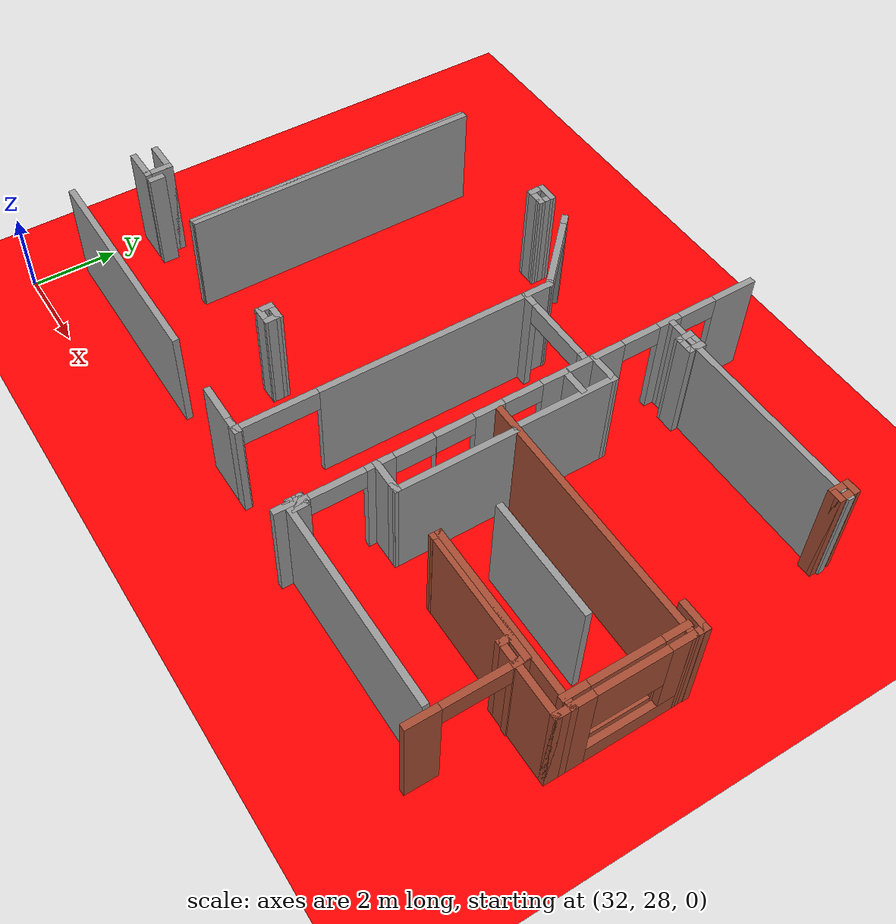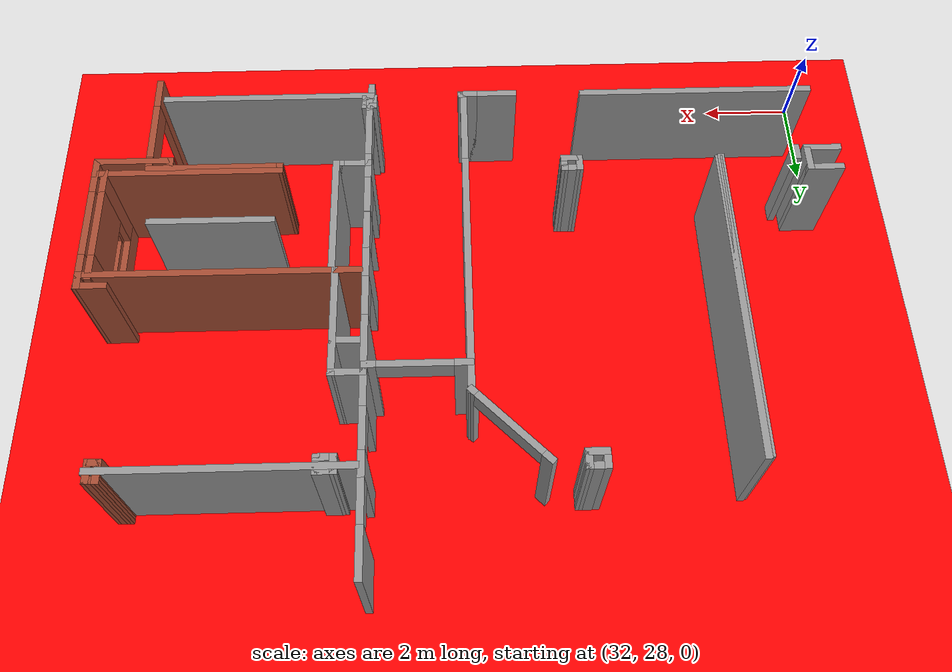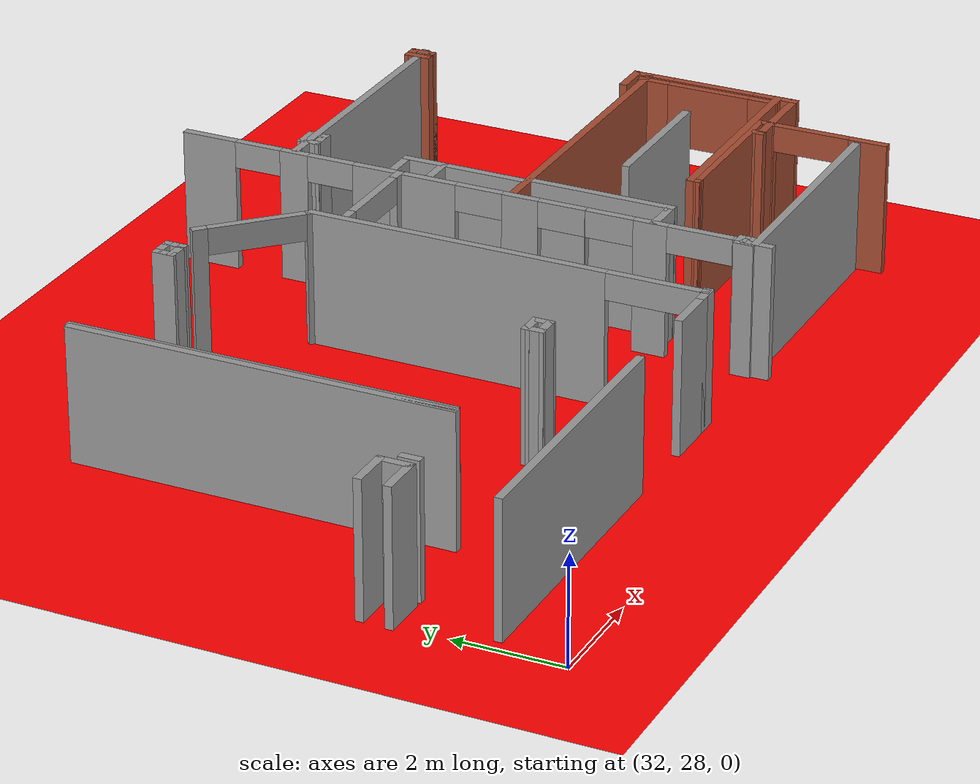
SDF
<sdf version="1.7">
 <world name="RaSpectLoc_ign">
  <model name="ground_plane">
   <static>1</static>
   <link name="link">
    <collision name="collision">
     <geometry><plane><normal>0 0 1</normal><size>100 100</size></plane></geometry>
     <surface><friction><ode><mu>100</mu><mu2>50</mu2></ode></friction></surface>
    </collision>
    <visual name="visual">
     <cast_shadows>0</cast_shadows>
     <geometry><plane><normal>0 0 1</normal><size>100 100</size></plane></geometry>
     <material><ambient>1 0 0 1</ambient><diffuse>1 0 0 1</diffuse><specular>0.1 0.1 0.1 1</specular></material>
    </visual>
   </link>
  </model>
  <model name="CVSSP">
   <pose>23.8714 24.094 0 0 -0 0</pose>
   <link name="Wall_1">
    <pose>15.5976 13.2926 0 0 0 -0.785398</pose>
    <visual name="Wall_1_Visual_0">
     <pose>-0.986494 0 1.25 0 -0 0</pose>
     <geometry><box><size>0.277012 0.15 2.5</size></box></geometry>
     <material>
      <script><uri>file://media/materials/scripts/gazebo.material</uri><name>Gazebo/Grey</name></script>
      <ambient>0.588235 0.588235 0.588235 1</ambient>
     </material>
    </visual>
    <collision name="Wall_1_Collision_0">
     <geometry><box><size>0.277012 0.15 2.5</size></box></geometry>
     <pose>-0.986494 0 1.25 0 -0 0</pose>
    </collision>
    <visual name="Wall_1_Visual_1">
     <pose>1.02335 0 1.25 0 -0 0</pose>
     <geometry><box><size>0.203299 0.15 2.5</size></box></geometry>
     <material>
      <script><uri>file://media/materials/scripts/gazebo.material</uri><name>Gazebo/Grey</name></script>
      <ambient>0.588235 0.588235 0.588235 1</ambient>
     </material>
    </visual>
    <collision name="Wall_1_Collision_1">
     <geometry><box><size>0.203299 0.15 2.5</size></box></geometry>
     <pose>1.02335 0 1.25 0 -0 0</pose>
    </collision>
    <visual name="Wall_1_Visual_2">
     <pose>0.036857 0 2.25 0 -0 0</pose>
     <geometry><box><size>1.76969 0.15 0.5</size></box></geometry>
     <material>
      <script><uri>file://media/materials/scripts/gazebo.material</uri><name>Gazebo/Grey</name></script>
      <ambient>0.588235 0.588235 0.588235 1</ambient>
     </material>
    </visual>
    <collision name="Wall_1_Collision_2">
     <geometry><box><size>1.76969 0.15 0.5</size></box></geometry>
     <pose>0.036857 0 2.25 0 -0 0</pose>
    </collision>
   </link>
   <link name="Wall_110">
    <collision name="Wall_110_Collision">
     <geometry><box><size>0.435877 0.15 2.5</size></box></geometry>
     <pose>0 0 1.25 0 -0 0</pose>
    </collision>
    <visual name="Wall_110_Visual">
     <pose>0 0 1.25 0 -0 0</pose>
     <geometry><box><size>0.435877 0.15 2.5</size></box></geometry>
     <material>
      <script><uri>file://media/materials/scripts/gazebo.material</uri><name>Gazebo/Grey</name></script>
      <ambient>1 1 1 1</ambient>
     </material>
    </visual>
    <pose>16.2513 5.17604 0 0 -0 0</pose>
   </link>
   <link name="Wall_112">
    <collision name="Wall_112_Collision">
     <geometry><box><size>1.05344 0.15 2.5</size></box></geometry>
     <pose>0 0 1.25 0 -0 0</pose>
    </collision>
    <visual name="Wall_112_Visual">
     <pose>0 0 1.25 0 -0 0</pose>
     <geometry><box><size>1.05344 0.15 2.5</size></box></geometry>
     <material>
      <script><uri>file://media/materials/scripts/gazebo.material</uri><name>Gazebo/Grey</name></script>
      <ambient>1 1 1 1</ambient>
     </material>
    </visual>
    <pose>15.6567 5.17604 0 0 -0 3.14159</pose>
   </link>
   <link name="Wall_137">
    <collision name="Wall_137_Collision">
     <geometry><box><size>0.344547 0.15 2.5</size></box></geometry>
     <pose>0 0 1.25 0 -0 0</pose>
    </collision>
    <visual name="Wall_137_Visual">
     <pose>0 0 1.25 0 -0 0</pose>
     <geometry><box><size>0.344547 0.15 2.5</size></box></geometry>
     <material>
      <script><uri>file://media/materials/scripts/gazebo.material</uri><name>Gazebo/Grey</name></script>
      <ambient>1 1 1 1</ambient>
     </material>
    </visual>
    <pose>18.4776 5.4664 0 0 -0 0</pose>
   </link>
   <link name="Wall_138">
    <collision name="Wall_138_Collision">
     <geometry><box><size>0.37481 0.15 2.5</size></box></geometry>
     <pose>0 0 1.25 0 -0 0</pose>
    </collision>
    <visual name="Wall_138_Visual">
     <pose>0 0 1.25 0 -0 0</pose>
     <geometry><box><size>0.37481 0.15 2.5</size></box></geometry>
     <material>
      <script><uri>file://media/materials/scripts/gazebo.material</uri><name>Gazebo/Grey</name></script>
      <ambient>1 1 1 1</ambient>
     </material>
    </visual>
    <pose>18.5749 5.354 0 0 0 -1.5708</pose>
   </link>
   <link name="Wall_139">
    <collision name="Wall_139_Collision">
     <geometry><box><size>0.344547 0.15 2.5</size></box></geometry>
     <pose>0 0 1.25 0 -0 0</pose>
    </collision>
    <visual name="Wall_139_Visual">
     <pose>0 0 1.25 0 -0 0</pose>
     <geometry><box><size>0.344547 0.15 2.5</size></box></geometry>
     <material>
      <script><uri>file://media/materials/scripts/gazebo.material</uri><name>Gazebo/Grey</name></script>
      <ambient>1 1 1 1</ambient>
     </material>
    </visual>
    <pose>18.4776 5.24159 0 0 -0 3.14159</pose>
   </link>
   <link name="Wall_140">
    <collision name="Wall_140_Collision">
     <geometry><box><size>0.370487 0.15 2.5</size></box></geometry>
     <pose>0 0 1.25 0 -0 0</pose>
    </collision>
    <visual name="Wall_140_Visual">
     <pose>0 0 1.25 0 -0 0</pose>
     <geometry><box><size>0.370487 0.15 2.5</size></box></geometry>
     <material>
      <script><uri>file://media/materials/scripts/gazebo.material</uri><name>Gazebo/Grey</name></script>
      <ambient>1 1 1 1</ambient>
     </material>
    </visual>
    <pose>18.3803 5.35184 0 0 -0 1.5708</pose>
   </link>
   <link name="Wall_142">
    <collision name="Wall_142_Collision">
     <geometry><box><size>4.79472 0.15 2.5</size></box></geometry>
     <pose>0 0 1.25 0 -0 0</pose>
    </collision>
    <visual name="Wall_142_Visual">
     <pose>0 0 1.25 0 -0 0</pose>
     <geometry><box><size>4.79472 0.15 2.5</size></box></geometry>
     <material>
      <script><uri>file://media/materials/scripts/gazebo.material</uri><name>Gazebo/Grey</name></script>
      <ambient>1 1 1 1</ambient>
     </material>
    </visual>
    <pose>20.7622 5.16977 0 0 0 -3.14127</pose>
   </link>
   <link name="Wall_200">
    <pose>23.2929 5.89364 0 0 -0 1.57095</pose>
    <visual name="Wall_200_Visual_0">
     <pose>-0.901323 0 1.25 0 -0 0</pose>
     <geometry><box><size>0.73684 0.15 2.5</size></box></geometry>
     <material>
      <script><uri>file://media/materials/scripts/gazebo.material</uri><name>Gazebo/Bricks</name></script>
      <ambient>0.588235 0.588235 0.588235 1</ambient>
     </material>
    </visual>
    <collision name="Wall_200_Collision_0">
     <geometry><box><size>0.73684 0.15 2.5</size></box></geometry>
     <pose>-0.901323 0 1.25 0 -0 0</pose>
    </collision>
    <visual name="Wall_200_Visual_1">
     <pose>1.08077 0 1.25 0 -0 0</pose>
     <geometry><box><size>0.377951 0.15 2.5</size></box></geometry>
     <material>
      <script><uri>file://media/materials/scripts/gazebo.material</uri><name>Gazebo/Bricks</name></script>
      <ambient>0.588235 0.588235 0.588235 1</ambient>
     </material>
    </visual>
    <collision name="Wall_200_Collision_1">
     <geometry><box><size>0.377951 0.15 2.5</size></box></geometry>
     <pose>1.08077 0 1.25 0 -0 0</pose>
    </collision>
    <visual name="Wall_200_Visual_2">
     <pose>0.179445 0 2.25 0 -0 0</pose>
     <geometry><box><size>1.4247 0.15 0.5</size></box></geometry>
     <material>
      <script><uri>file://media/materials/scripts/gazebo.material</uri><name>Gazebo/Bricks</name></script>
      <ambient>0.588235 0.588235 0.588235 1</ambient>
     </material>
    </visual>
    <collision name="Wall_200_Collision_2">
     <geometry><box><size>1.4247 0.15 0.5</size></box></geometry>
     <pose>0.179445 0 2.25 0 -0 0</pose>
    </collision>
   </link>
   <link name="Wall_201">
    <collision name="Wall_201_Collision">
     <geometry><box><size>3.01986 0.15 2.5</size></box></geometry>
     <pose>0 0 1.25 0 -0 0</pose>
    </collision>
    <visual name="Wall_201_Visual">
     <pose>0 0 1.25 0 -0 0</pose>
     <geometry><box><size>3.01986 0.15 2.5</size></box></geometry>
     <material>
      <script><uri>file://media/materials/scripts/gazebo.material</uri><name>Gazebo/Bricks</name></script>
      <ambient>1 1 1 1</ambient>
     </material>
    </visual>
    <pose>21.8512 7.08991 0 0 -0 3.14064</pose>
   </link>
   <link name="Wall_203">
    <collision name="Wall_203_Collision">
     <geometry><box><size>0.268535 0.15 2.5</size></box></geometry>
     <pose>0 0 1.25 0 -0 0</pose>
    </collision>
    <visual name="Wall_203_Visual">
     <pose>0 0 1.25 0 -0 0</pose>
     <geometry><box><size>0.268535 0.15 2.5</size></box></geometry>
     <material>
      <script><uri>file://media/materials/scripts/gazebo.material</uri><name>Gazebo/Bricks</name></script>
      <ambient>1 1 1 1</ambient>
     </material>
    </visual>
    <pose>20.4196 7.15046 0 0 -0 1.5153</pose>
   </link>
   <link name="Wall_204">
    <collision name="Wall_204_Collision">
     <geometry><box><size>4.16742 0.15 2.5</size></box></geometry>
     <pose>0 0 1.25 0 -0 0</pose>
    </collision>
    <visual name="Wall_204_Visual">
     <pose>0 0 1.25 0 -0 0</pose>
     <geometry><box><size>4.16742 0.15 2.5</size></box></geometry>
     <material>
      <script><uri>file://media/materials/scripts/gazebo.material</uri><name>Gazebo/Bricks</name></script>
      <ambient>1 1 1 1</ambient>
     </material>
    </visual>
    <pose>22.425 7.20963 0 0 -0 0</pose>
   </link>
   <link name="Wall_206">
    <collision name="Wall_206_Collision">
     <geometry><box><size>0.472183 0.15 2.5</size></box></geometry>
     <pose>0 0 1.25 0 -0 0</pose>
    </collision>
    <visual name="Wall_206_Visual">
     <pose>0 0 1.25 0 -0 0</pose>
     <geometry><box><size>0.472183 0.15 2.5</size></box></geometry>
     <material>
      <script><uri>file://media/materials/scripts/gazebo.material</uri><name>Gazebo/Bricks</name></script>
      <ambient>1 1 1 1</ambient>
     </material>
    </visual>
    <pose>24.4337 7.04854 0 0 0 -1.5708</pose>
   </link>
   <link name="Wall_207">
    <collision name="Wall_207_Collision">
     <geometry><box><size>1.75 0.15 2.5</size></box></geometry>
     <pose>0 0 1.25 0 -0 0</pose>
    </collision>
    <visual name="Wall_207_Visual">
     <pose>0 0 1.25 0 -0 0</pose>
     <geometry><box><size>1.75 0.15 2.5</size></box></geometry>
     <material>
      <script><uri>file://media/materials/scripts/gazebo.material</uri><name>Gazebo/Bricks</name></script>
      <ambient>1 1 1 1</ambient>
     </material>
    </visual>
    <pose>23.6337 6.88745 0 0 -0 3.14159</pose>
   </link>
   <link name="Wall_208">
    <collision name="Wall_208_Collision">
     <geometry><box><size>0.25 0.15 2.5</size></box></geometry>
     <pose>0 0 1.25 0 -0 0</pose>
    </collision>
    <visual name="Wall_208_Visual">
     <pose>0 0 1.25 0 -0 0</pose>
     <geometry><box><size>0.25 0.15 2.5</size></box></geometry>
     <material>
      <script><uri>file://media/materials/scripts/gazebo.material</uri><name>Gazebo/Bricks</name></script>
      <ambient>1 1 1 1</ambient>
     </material>
    </visual>
    <pose>22.8337 6.93745 0 0 -0 1.5708</pose>
   </link>
   <link name="Wall_213">
    <pose>24.4337 8.48333 0 0 -0 1.5708</pose>
    <visual name="Wall_213_Visual_0">
     <pose>-1.07539 0 1.25 0 -0 0</pose>
     <geometry><box><size>0.546615 0.15 2.5</size></box></geometry>
     <material>
      <script><uri>file://media/materials/scripts/gazebo.material</uri><name>Gazebo/Bricks</name></script>
      <ambient>1 1 1 1</ambient>
     </material>
    </visual>
    <collision name="Wall_213_Collision_0">
     <geometry><box><size>0.546615 0.15 2.5</size></box></geometry>
     <pose>-1.07539 0 1.25 0 -0 0</pose>
    </collision>
    <visual name="Wall_213_Visual_1">
     <pose>0.273308 0 0.25 0 -0 0</pose>
     <geometry><box><size>2.15078 0.15 0.5</size></box></geometry>
     <material>
      <script><uri>file://media/materials/scripts/gazebo.material</uri><name>Gazebo/Bricks</name></script>
      <ambient>1 1 1 1</ambient>
     </material>
    </visual>
    <collision name="Wall_213_Collision_1">
     <geometry><box><size>2.15078 0.15 0.5</size></box></geometry>
     <pose>0.273308 0 0.25 0 -0 0</pose>
    </collision>
    <visual name="Wall_213_Visual_2">
     <pose>1.06771 0 1.5 0 -0 0</pose>
     <geometry><box><size>0.561981 0.15 2</size></box></geometry>
     <material>
      <script><uri>file://media/materials/scripts/gazebo.material</uri><name>Gazebo/Bricks</name></script>
      <ambient>1 1 1 1</ambient>
     </material>
    </visual>
    <collision name="Wall_213_Collision_2">
     <geometry><box><size>0.561981 0.15 2</size></box></geometry>
     <pose>1.06771 0 1.5 0 -0 0</pose>
    </collision>
    <visual name="Wall_213_Visual_3">
     <pose>-0.007683 0 1.9 0 -0 0</pose>
     <geometry><box><size>1.5888 0.15 1.2</size></box></geometry>
     <material>
      <script><uri>file://media/materials/scripts/gazebo.material</uri><name>Gazebo/Bricks</name></script>
      <ambient>1 1 1 1</ambient>
     </material>
    </visual>
    <collision name="Wall_213_Collision_3">
     <geometry><box><size>1.5888 0.15 1.2</size></box></geometry>
     <pose>-0.007683 0 1.9 0 -0 0</pose>
    </collision>
   </link>
   <link name="Wall_214">
    <collision name="Wall_214_Collision">
     <geometry><box><size>5.97381 0.15 2.5</size></box></geometry>
     <pose>0 0 1.25 0 -0 0</pose>
    </collision>
    <visual name="Wall_214_Visual">
     <pose>0 0 1.25 0 -0 0</pose>
     <geometry><box><size>5.97381 0.15 2.5</size></box></geometry>
     <material>
      <script><uri>file://media/materials/scripts/gazebo.material</uri><name>Gazebo/Bricks</name></script>
      <ambient>0.588235 0.588235 0.588235 1</ambient>
     </material>
    </visual>
    <pose>21.5218 9.76806 0 0 -0 3.14006</pose>
   </link>
   <link name="Wall_220">
    <pose>24.2299 8.49507 0 0 0 -1.5708</pose>
    <visual name="Wall_220_Visual_0">
     <pose>-1.08519 0 1.25 0 -0 0</pose>
     <geometry><box><size>0.603103 0.15 2.5</size></box></geometry>
     <material>
      <script><uri>file://media/materials/scripts/gazebo.material</uri><name>Gazebo/Bricks</name></script>
      <ambient>1 1 1 1</ambient>
     </material>
    </visual>
    <collision name="Wall_220_Collision_0">
     <geometry><box><size>0.603103 0.15 2.5</size></box></geometry>
     <pose>-1.08519 0 1.25 0 -0 0</pose>
    </collision>
    <visual name="Wall_220_Visual_1">
     <pose>0.301552 0 0.25 0 -0 0</pose>
     <geometry><box><size>2.17039 0.15 0.5</size></box></geometry>
     <material>
      <script><uri>file://media/materials/scripts/gazebo.material</uri><name>Gazebo/Bricks</name></script>
      <ambient>1 1 1 1</ambient>
     </material>
    </visual>
    <collision name="Wall_220_Collision_1">
     <geometry><box><size>2.17039 0.15 0.5</size></box></geometry>
     <pose>0.301552 0 0.25 0 -0 0</pose>
    </collision>
    <visual name="Wall_220_Visual_2">
     <pose>1.09595 0 1.5 0 -0 0</pose>
     <geometry><box><size>0.581584 0.15 2</size></box></geometry>
     <material>
      <script><uri>file://media/materials/scripts/gazebo.material</uri><name>Gazebo/Bricks</name></script>
      <ambient>1 1 1 1</ambient>
     </material>
    </visual>
    <collision name="Wall_220_Collision_2">
     <geometry><box><size>0.581584 0.15 2</size></box></geometry>
     <pose>1.09595 0 1.5 0 -0 0</pose>
    </collision>
    <visual name="Wall_220_Visual_3">
     <pose>0.010759 0 1.9 0 -0 0</pose>
     <geometry><box><size>1.5888 0.15 1.2</size></box></geometry>
     <material>
      <script><uri>file://media/materials/scripts/gazebo.material</uri><name>Gazebo/Bricks</name></script>
      <ambient>1 1 1 1</ambient>
     </material>
    </visual>
    <collision name="Wall_220_Collision_3">
     <geometry><box><size>1.5888 0.15 1.2</size></box></geometry>
     <pose>0.010759 0 1.9 0 -0 0</pose>
    </collision>
   </link>
   <link name="Wall_222">
    <collision name="Wall_222_Collision">
     <geometry><box><size>0.75 0.15 2.5</size></box></geometry>
     <pose>0 0 1.25 0 -0 0</pose>
    </collision>
    <visual name="Wall_222_Visual">
     <pose>0 0 1.25 0 -0 0</pose>
     <geometry><box><size>0.75 0.15 2.5</size></box></geometry>
     <material>
      <script><uri>file://media/materials/scripts/gazebo.material</uri><name>Gazebo/Grey</name></script>
      <ambient>0.588235 0.588235 0.588235 1</ambient>
     </material>
    </visual>
    <pose>18.778 7.05344 0 0 -0 0</pose>
   </link>
   <link name="Wall_223">
    <collision name="Wall_223_Collision">
     <geometry><box><size>0.25 0.15 2.5</size></box></geometry>
     <pose>0 0 1.25 0 -0 0</pose>
    </collision>
    <visual name="Wall_223_Visual">
     <pose>0 0 1.25 0 -0 0</pose>
     <geometry><box><size>0.25 0.15 2.5</size></box></geometry>
     <material>
      <script><uri>file://media/materials/scripts/gazebo.material</uri><name>Gazebo/Grey</name></script>
      <ambient>1 1 1 1</ambient>
     </material>
    </visual>
    <pose>19.128 7.05344 0 0 -0 0</pose>
   </link>
   <link name="Wall_224">
    <collision name="Wall_224_Collision">
     <geometry><box><size>2.81007 0.15 2.5</size></box></geometry>
     <pose>0 0 1.25 0 -0 0</pose>
    </collision>
    <visual name="Wall_224_Visual">
     <pose>0 0 1.25 0 -0 0</pose>
     <geometry><box><size>2.81007 0.15 2.5</size></box></geometry>
     <material>
      <script><uri>file://media/materials/scripts/gazebo.material</uri><name>Gazebo/Grey</name></script>
      <ambient>0.588235 0.588235 0.588235 1</ambient>
     </material>
    </visual>
    <pose>19.1823 8.38344 0 0 -0 1.56755</pose>
   </link>
   <link name="Wall_228">
    <pose>17.4069 11.9566 0 0 -0 0</pose>
    <visual name="Wall_228_Visual_0">
     <pose>-0.929285 0 1.25 0 -0 0</pose>
     <geometry><box><size>0.391429 0.15 2.5</size></box></geometry>
     <material>
      <script><uri>file://media/materials/scripts/gazebo.material</uri><name>Gazebo/Grey</name></script>
      <ambient>0.588235 0.588235 0.588235 1</ambient>
     </material>
    </visual>
    <collision name="Wall_228_Collision_0">
     <geometry><box><size>0.391429 0.15 2.5</size></box></geometry>
     <pose>-0.929285 0 1.25 0 -0 0</pose>
    </collision>
    <visual name="Wall_228_Visual_1">
     <pose>0.97634 0 1.25 0 -0 0</pose>
     <geometry><box><size>0.297321 0.15 2.5</size></box></geometry>
     <material>
      <script><uri>file://media/materials/scripts/gazebo.material</uri><name>Gazebo/Grey</name></script>
      <ambient>0.588235 0.588235 0.588235 1</ambient>
     </material>
    </visual>
    <collision name="Wall_228_Collision_1">
     <geometry><box><size>0.297321 0.15 2.5</size></box></geometry>
     <pose>0.97634 0 1.25 0 -0 0</pose>
    </collision>
    <visual name="Wall_228_Visual_2">
     <pose>0.047054 0 2.25 0 -0 0</pose>
     <geometry><box><size>1.56125 0.15 0.5</size></box></geometry>
     <material>
      <script><uri>file://media/materials/scripts/gazebo.material</uri><name>Gazebo/Grey</name></script>
      <ambient>0.588235 0.588235 0.588235 1</ambient>
     </material>
    </visual>
    <collision name="Wall_228_Collision_2">
     <geometry><box><size>1.56125 0.15 0.5</size></box></geometry>
     <pose>0.047054 0 2.25 0 -0 0</pose>
    </collision>
   </link>
   <link name="Wall_233">
    <collision name="Wall_233_Collision">
     <geometry><box><size>0.784783 0.15 2.5</size></box></geometry>
     <pose>0 0 1.25 0 -0 0</pose>
    </collision>
    <visual name="Wall_233_Visual">
     <pose>0 0 1.25 0 -0 0</pose>
     <geometry><box><size>0.784783 0.15 2.5</size></box></geometry>
     <material>
      <script><uri>file://media/materials/scripts/gazebo.material</uri><name>Gazebo/Grey</name></script>
      <ambient>1 1 1 1</ambient>
     </material>
    </visual>
    <pose>18.7997 12.116 0 0 -0 3.14159</pose>
   </link>
   <link name="Wall_235">
    <collision name="Wall_235_Collision">
     <geometry><box><size>2.48045 0.15 2.5</size></box></geometry>
     <pose>0 0 1.25 0 -0 0</pose>
    </collision>
    <visual name="Wall_235_Visual">
     <pose>0 0 1.25 0 -0 0</pose>
     <geometry><box><size>2.48045 0.15 2.5</size></box></geometry>
     <material>
      <script><uri>file://media/materials/scripts/gazebo.material</uri><name>Gazebo/Grey</name></script>
      <ambient>1 1 1 1</ambient>
     </material>
    </visual>
    <pose>19.1127 10.9507 0 0 0 -1.57453</pose>
   </link>
   <link name="Wall_237">
    <collision name="Wall_237_Collision">
     <geometry><box><size>0.75 0.15 2.5</size></box></geometry>
     <pose>0 0 1.25 0 -0 0</pose>
    </collision>
    <visual name="Wall_237_Visual">
     <pose>0 0 1.25 0 -0 0</pose>
     <geometry><box><size>0.75 0.15 2.5</size></box></geometry>
     <material>
      <script><uri>file://media/materials/scripts/gazebo.material</uri><name>Gazebo/Grey</name></script>
      <ambient>1 1 1 1</ambient>
     </material>
    </visual>
    <pose>18.798 11.4046 0 0 -0 0</pose>
   </link>
   <link name="Wall_239">
    <collision name="Wall_239_Collision">
     <geometry><box><size>0.410984 0.15 2.5</size></box></geometry>
     <pose>0 0 1.25 0 -0 0</pose>
    </collision>
    <visual name="Wall_239_Visual">
     <pose>0 0 1.25 0 -0 0</pose>
     <geometry><box><size>0.410984 0.15 2.5</size></box></geometry>
     <material>
      <script><uri>file://media/materials/scripts/gazebo.material</uri><name>Gazebo/Bricks</name></script>
      <ambient>1 1 1 1</ambient>
     </material>
    </visual>
    <pose>24.4308 9.89408 0 0 -0 1.593</pose>
   </link>
   <link name="Wall_240">
    <collision name="Wall_240_Collision">
     <geometry><box><size>0.714004 0.15 2.5</size></box></geometry>
     <pose>0 0 1.25 0 -0 0</pose>
    </collision>
    <visual name="Wall_240_Visual">
     <pose>0 0 1.25 0 -0 0</pose>
     <geometry><box><size>0.714004 0.15 2.5</size></box></geometry>
     <material>
      <script><uri>file://media/materials/scripts/gazebo.material</uri><name>Gazebo/Bricks</name></script>
      <ambient>1 1 1 1</ambient>
     </material>
    </visual>
    <pose>24.156 10.0241 0 0 0 -3.1399</pose>
   </link>
   <link name="Wall_40">
    <collision name="Wall_40_Collision">
     <geometry><box><size>0.82 0.15 2.5</size></box></geometry>
     <pose>0 0 1.25 0 -0 0</pose>
    </collision>
    <visual name="Wall_40_Visual">
     <pose>0 0 1.25 0 -0 0</pose>
     <geometry><box><size>0.82 0.15 2.5</size></box></geometry>
     <material>
      <script><uri>file://media/materials/scripts/gazebo.material</uri><name>Gazebo/Grey</name></script>
      <ambient>1 1 1 1</ambient>
     </material>
    </visual>
    <pose>8.4225 7.39869 0 0 -0 0</pose>
   </link>
   <link name="Wall_41">
    <collision name="Wall_41_Collision">
     <geometry><box><size>0.67 0.15 2.5</size></box></geometry>
     <pose>0 0 1.25 0 -0 0</pose>
    </collision>
    <visual name="Wall_41_Visual">
     <pose>0 0 1.25 0 -0 0</pose>
     <geometry><box><size>0.67 0.15 2.5</size></box></geometry>
     <material>
      <script><uri>file://media/materials/scripts/gazebo.material</uri><name>Gazebo/Grey</name></script>
      <ambient>1 1 1 1</ambient>
     </material>
    </visual>
    <pose>8.7575 7.13868 0 0 0 -1.5708</pose>
   </link>
   <link name="Wall_42">
    <collision name="Wall_42_Collision">
     <geometry><box><size>0.84 0.15 2.5</size></box></geometry>
     <pose>0 0 1.25 0 -0 0</pose>
    </collision>
    <visual name="Wall_42_Visual">
     <pose>0 0 1.25 0 -0 0</pose>
     <geometry><box><size>0.84 0.15 2.5</size></box></geometry>
     <material>
      <script><uri>file://media/materials/scripts/gazebo.material</uri><name>Gazebo/Grey</name></script>
      <ambient>1 1 1 1</ambient>
     </material>
    </visual>
    <pose>8.4125 6.87868 0 0 -0 3.14159</pose>
   </link>
   <link name="Wall_45">
    <collision name="Wall_45_Collision">
     <geometry><box><size>0.380217 0.15 2.5</size></box></geometry>
     <pose>0 0 1.25 0 -0 0</pose>
    </collision>
    <visual name="Wall_45_Visual">
     <pose>0 0 1.25 0 -0 0</pose>
     <geometry><box><size>0.380217 0.15 2.5</size></box></geometry>
     <material>
      <script><uri>file://media/materials/scripts/gazebo.material</uri><name>Gazebo/Grey</name></script>
      <ambient>1 1 1 1</ambient>
     </material>
    </visual>
    <pose>8.9975 6.98369 0 0 0 -1.5708</pose>
   </link>
   <link name="Wall_48">
    <collision name="Wall_48_Collision">
     <geometry><box><size>0.485616 0.15 2.5</size></box></geometry>
     <pose>0 0 1.25 0 -0 0</pose>
    </collision>
    <visual name="Wall_48_Visual">
     <pose>0 0 1.25 0 -0 0</pose>
     <geometry><box><size>0.485616 0.15 2.5</size></box></geometry>
     <material>
      <script><uri>file://media/materials/scripts/gazebo.material</uri><name>Gazebo/Grey</name></script>
      <ambient>1 1 1 1</ambient>
     </material>
    </visual>
    <pose>13.9944 7.29164 0 0 0 -0.000129</pose>
   </link>
   <link name="Wall_49">
    <collision name="Wall_49_Collision">
     <geometry><box><size>0.405637 0.15 2.5</size></box></geometry>
     <pose>0 0 1.25 0 -0 0</pose>
    </collision>
    <visual name="Wall_49_Visual">
     <pose>0 0 1.25 0 -0 0</pose>
     <geometry><box><size>0.405637 0.15 2.5</size></box></geometry>
     <material>
      <script><uri>file://media/materials/scripts/gazebo.material</uri><name>Gazebo/Grey</name></script>
      <ambient>1 1 1 1</ambient>
     </material>
    </visual>
    <pose>14.162 7.1638 0 0 0 -1.57228</pose>
   </link>
   <link name="Wall_50">
    <collision name="Wall_50_Collision">
     <geometry><box><size>0.483145 0.15 2.5</size></box></geometry>
     <pose>0 0 1.25 0 -0 0</pose>
    </collision>
    <visual name="Wall_50_Visual">
     <pose>0 0 1.25 0 -0 0</pose>
     <geometry><box><size>0.483145 0.15 2.5</size></box></geometry>
     <material>
      <script><uri>file://media/materials/scripts/gazebo.material</uri><name>Gazebo/Grey</name></script>
      <ambient>1 1 1 1</ambient>
     </material>
    </visual>
    <pose>13.9952 7.03593 0 0 0 -3.14129</pose>
   </link>
   <link name="Wall_51">
    <collision name="Wall_51_Collision">
     <geometry><box><size>0.405791 0.15 2.5</size></box></geometry>
     <pose>0 0 1.25 0 -0 0</pose>
    </collision>
    <visual name="Wall_51_Visual">
     <pose>0 0 1.25 0 -0 0</pose>
     <geometry><box><size>0.405791 0.15 2.5</size></box></geometry>
     <material>
      <script><uri>file://media/materials/scripts/gazebo.material</uri><name>Gazebo/Grey</name></script>
      <ambient>1 1 1 1</ambient>
     </material>
    </visual>
    <pose>13.8276 7.16378 0 0 -0 1.5792</pose>
   </link>
   <link name="Wall_53">
    <collision name="Wall_53_Collision">
     <geometry><box><size>7.09358 0.15 2.5</size></box></geometry>
     <pose>0 0 1.25 0 -0 0</pose>
    </collision>
    <visual name="Wall_53_Visual">
     <pose>0 0 1.25 0 -0 0</pose>
     <geometry><box><size>7.09358 0.15 2.5</size></box></geometry>
     <material>
      <script><uri>file://media/materials/scripts/gazebo.material</uri><name>Gazebo/Grey</name></script>
      <ambient>1 1 1 1</ambient>
     </material>
    </visual>
    <pose>10.7501 10.5821 0 0 0 -1.5708</pose>
   </link>
   <link name="Wall_533">
    <collision name="Wall_533_Collision">
     <geometry><box><size>5.25 0.15 2.5</size></box></geometry>
     <pose>0 0 1.25 0 -0 0</pose>
    </collision>
    <visual name="Wall_533_Visual">
     <pose>0 0 1.25 0 -0 0</pose>
     <geometry><box><size>5.25 0.15 2.5</size></box></geometry>
     <material>
      <script><uri>file://media/materials/scripts/gazebo.material</uri><name>Gazebo/Grey</name></script>
      <ambient>0.588235 0.588235 0.588235 1</ambient>
     </material>
    </visual>
    <pose>21.1286 14.0544 0 0 -0 3.14159</pose>
   </link>
   <link name="Wall_534">
    <collision name="Wall_534_Collision">
     <geometry><box><size>0.15 0.15 2.5</size></box></geometry>
     <pose>0 0 1.25 0 -0 0</pose>
    </collision>
    <visual name="Wall_534_Visual">
     <pose>0 0 1.25 0 -0 0</pose>
     <geometry><box><size>0.15 0.15 2.5</size></box></geometry>
     <material>
      <script><uri>file://media/materials/scripts/gazebo.material</uri><name>Gazebo/Grey</name></script>
      <ambient>1 1 1 1</ambient>
     </material>
    </visual>
    <pose>18.5786 14.0544 0 0 -0 0</pose>
   </link>
   <link name="Wall_535">
    <collision name="Wall_535_Collision">
     <geometry><box><size>0.15 0.15 2.5</size></box></geometry>
     <pose>0 0 1.25 0 -0 0</pose>
    </collision>
    <visual name="Wall_535_Visual">
     <pose>0 0 1.25 0 -0 0</pose>
     <geometry><box><size>0.15 0.15 2.5</size></box></geometry>
     <material>
      <script><uri>file://media/materials/scripts/gazebo.material</uri><name>Gazebo/Grey</name></script>
      <ambient>1 1 1 1</ambient>
     </material>
    </visual>
    <pose>18.5786 14.0544 0 0 -0 0</pose>
   </link>
   <link name="Wall_594">
    <collision name="Wall_594_Collision">
     <geometry><box><size>2.75 0.15 2.5</size></box></geometry>
     <pose>0 0 1.25 0 -0 0</pose>
    </collision>
    <visual name="Wall_594_Visual">
     <pose>0 0 1.25 0 -0 0</pose>
     <geometry><box><size>2.75 0.15 2.5</size></box></geometry>
     <material>
      <script><uri>file://media/materials/scripts/gazebo.material</uri><name>Gazebo/Grey</name></script>
      <ambient>0.588235 0.588235 0.588235 1</ambient>
     </material>
    </visual>
    <pose>21.8103 8.48184 0 0 -0 0</pose>
   </link>
   <link name="Wall_6">
    <pose>16.34 8.87509 0 0 0 -1.5708</pose>
    <visual name="Wall_6_Visual_0">
     <pose>-0.935121 0 1.25 0 -0 0</pose>
     <geometry><box><size>5.62976 0.15 2.5</size></box></geometry>
     <material>
      <script><uri>file://media/materials/scripts/gazebo.material</uri><name>Gazebo/Grey</name></script>
      <ambient>0.588235 0.588235 0.588235 1</ambient>
     </material>
    </visual>
    <collision name="Wall_6_Collision_0">
     <geometry><box><size>5.62976 0.15 2.5</size></box></geometry>
     <pose>-0.935121 0 1.25 0 -0 0</pose>
    </collision>
    <visual name="Wall_6_Visual_1">
     <pose>3.6759 0 1.25 0 -0 0</pose>
     <geometry><box><size>0.148208 0.15 2.5</size></box></geometry>
     <material>
      <script><uri>file://media/materials/scripts/gazebo.material</uri><name>Gazebo/Grey</name></script>
      <ambient>0.588235 0.588235 0.588235 1</ambient>
     </material>
    </visual>
    <collision name="Wall_6_Collision_1">
     <geometry><box><size>0.148208 0.15 2.5</size></box></geometry>
     <pose>3.6759 0 1.25 0 -0 0</pose>
    </collision>
    <visual name="Wall_6_Visual_2">
     <pose>2.74078 0 2.25 0 -0 0</pose>
     <geometry><box><size>1.72203 0.15 0.5</size></box></geometry>
     <material>
      <script><uri>file://media/materials/scripts/gazebo.material</uri><name>Gazebo/Grey</name></script>
      <ambient>0.588235 0.588235 0.588235 1</ambient>
     </material>
    </visual>
    <collision name="Wall_6_Collision_2">
     <geometry><box><size>1.72203 0.15 0.5</size></box></geometry>
     <pose>2.74078 0 2.25 0 -0 0</pose>
    </collision>
   </link>
   <link name="Wall_60">
    <collision name="Wall_60_Collision">
     <geometry><box><size>7.09041 0.15 2.5</size></box></geometry>
     <pose>0 0 1.25 0 -0 0</pose>
    </collision>
    <visual name="Wall_60_Visual">
     <pose>0 0 1.25 0 -0 0</pose>
     <geometry><box><size>7.09041 0.15 2.5</size></box></geometry>
     <material>
      <script><uri>file://media/materials/scripts/gazebo.material</uri><name>Gazebo/Grey</name></script>
      <ambient>0.588235 0.588235 0.588235 1</ambient>
     </material>
    </visual>
    <pose>10.6949 10.5553 0 0 0 -1.57007</pose>
   </link>
   <link name="Wall_62">
    <collision name="Wall_62_Collision">
     <geometry><box><size>0.5 0.15 2.5</size></box></geometry>
     <pose>0 0 1.25 0 -0 0</pose>
    </collision>
    <visual name="Wall_62_Visual">
     <pose>0 0 1.25 0 -0 0</pose>
     <geometry><box><size>0.5 0.15 2.5</size></box></geometry>
     <material>
      <script><uri>file://media/materials/scripts/gazebo.material</uri><name>Gazebo/Grey</name></script>
      <ambient>1 1 1 1</ambient>
     </material>
    </visual>
    <pose>13.9808 14.1734 0 0 -0 0</pose>
   </link>
   <link name="Wall_63">
    <collision name="Wall_63_Collision">
     <geometry><box><size>0.433407 0.15 2.5</size></box></geometry>
     <pose>0 0 1.25 0 -0 0</pose>
    </collision>
    <visual name="Wall_63_Visual">
     <pose>0 0 1.25 0 -0 0</pose>
     <geometry><box><size>0.433407 0.15 2.5</size></box></geometry>
     <material>
      <script><uri>file://media/materials/scripts/gazebo.material</uri><name>Gazebo/Grey</name></script>
      <ambient>1 1 1 1</ambient>
     </material>
    </visual>
    <pose>14.1548 14.0317 0 0 0 -1.57777</pose>
   </link>
   <link name="Wall_64">
    <collision name="Wall_64_Collision">
     <geometry><box><size>0.498059 0.15 2.5</size></box></geometry>
     <pose>0 0 1.25 0 -0 0</pose>
    </collision>
    <visual name="Wall_64_Visual">
     <pose>0 0 1.25 0 -0 0</pose>
     <geometry><box><size>0.498059 0.15 2.5</size></box></geometry>
     <material>
      <script><uri>file://media/materials/scripts/gazebo.material</uri><name>Gazebo/Grey</name></script>
      <ambient>1 1 1 1</ambient>
     </material>
    </visual>
    <pose>13.9798 13.8925 0 0 -0 3.12731</pose>
   </link>
   <link name="Wall_65">
    <collision name="Wall_65_Collision">
     <geometry><box><size>0.428419 0.15 2.5</size></box></geometry>
     <pose>0 0 1.25 0 -0 0</pose>
    </collision>
    <visual name="Wall_65_Visual">
     <pose>0 0 1.25 0 -0 0</pose>
     <geometry><box><size>0.428419 0.15 2.5</size></box></geometry>
     <material>
      <script><uri>file://media/materials/scripts/gazebo.material</uri><name>Gazebo/Grey</name></script>
      <ambient>1 1 1 1</ambient>
     </material>
    </visual>
    <pose>13.8008 14.0342 0 0 -0 1.5708</pose>
   </link>
   <link name="Wall_673">
    <collision name="Wall_673_Collision">
     <geometry><box><size>0.486902 0.15 2.5</size></box></geometry>
     <pose>0 0 1.25 0 -0 0</pose>
    </collision>
    <visual name="Wall_673_Visual">
     <pose>0 0 1.25 0 -0 0</pose>
     <geometry><box><size>0.486902 0.15 2.5</size></box></geometry>
     <material>
      <script><uri>file://media/materials/scripts/gazebo.material</uri><name>Gazebo/Grey</name></script>
      <ambient>1 1 1 1</ambient>
     </material>
    </visual>
    <pose>19.1589 14.1574 0 0 -0 0</pose>
   </link>
   <link name="Wall_674">
    <collision name="Wall_674_Collision">
     <geometry><box><size>0.426562 0.15 2.5</size></box></geometry>
     <pose>0 0 1.25 0 -0 0</pose>
    </collision>
    <visual name="Wall_674_Visual">
     <pose>0 0 1.25 0 -0 0</pose>
     <geometry><box><size>0.426562 0.15 2.5</size></box></geometry>
     <material>
      <script><uri>file://media/materials/scripts/gazebo.material</uri><name>Gazebo/Grey</name></script>
      <ambient>1 1 1 1</ambient>
     </material>
    </visual>
    <pose>19.3273 14.0191 0 0 0 -1.5708</pose>
   </link>
   <link name="Wall_675">
    <collision name="Wall_675_Collision">
     <geometry><box><size>0.476846 0.15 2.5</size></box></geometry>
     <pose>0 0 1.25 0 -0 0</pose>
    </collision>
    <visual name="Wall_675_Visual">
     <pose>0 0 1.25 0 -0 0</pose>
     <geometry><box><size>0.476846 0.15 2.5</size></box></geometry>
     <material>
      <script><uri>file://media/materials/scripts/gazebo.material</uri><name>Gazebo/Grey</name></script>
      <ambient>1 1 1 1</ambient>
     </material>
    </visual>
    <pose>19.1639 13.8808 0 0 -0 3.14159</pose>
   </link>
   <link name="Wall_676">
    <collision name="Wall_676_Collision">
     <geometry><box><size>0.426744 0.15 2.5</size></box></geometry>
     <pose>0 0 1.25 0 -0 0</pose>
    </collision>
    <visual name="Wall_676_Visual">
     <pose>0 0 1.25 0 -0 0</pose>
     <geometry><box><size>0.426744 0.15 2.5</size></box></geometry>
     <material>
      <script><uri>file://media/materials/scripts/gazebo.material</uri><name>Gazebo/Grey</name></script>
      <ambient>1 1 1 1</ambient>
     </material>
    </visual>
    <pose>18.9954 14.0191 0 0 -0 1.60714</pose>
   </link>
   <link name="Wall_678">
    <collision name="Wall_678_Collision">
     <geometry><box><size>0.341089 0.15 2.5</size></box></geometry>
     <pose>0 0 1.25 0 -0 0</pose>
    </collision>
    <visual name="Wall_678_Visual">
     <pose>0 0 1.25 0 -0 0</pose>
     <geometry><box><size>0.341089 0.15 2.5</size></box></geometry>
     <material>
      <script><uri>file://media/materials/scripts/gazebo.material</uri><name>Gazebo/Bricks</name></script>
      <ambient>1 1 1 1</ambient>
     </material>
    </visual>
    <pose>23.5361 14.2369 0 0 -0 3.13119</pose>
   </link>
   <link name="Wall_679">
    <collision name="Wall_679_Collision">
     <geometry><box><size>0.501988 0.15 2.5</size></box></geometry>
     <pose>0 0 1.25 0 -0 0</pose>
    </collision>
    <visual name="Wall_679_Visual">
     <pose>0 0 1.25 0 -0 0</pose>
     <geometry><box><size>0.501988 0.15 2.5</size></box></geometry>
     <material>
      <script><uri>file://media/materials/scripts/gazebo.material</uri><name>Gazebo/Bricks</name></script>
      <ambient>1 1 1 1</ambient>
     </material>
    </visual>
    <pose>23.4405 14.0619 0 0 0 -1.5708</pose>
   </link>
   <link name="Wall_680">
    <collision name="Wall_680_Collision">
     <geometry><box><size>0.341145 0.15 2.5</size></box></geometry>
     <pose>0 0 1.25 0 -0 0</pose>
    </collision>
    <visual name="Wall_680_Visual">
     <pose>0 0 1.25 0 -0 0</pose>
     <geometry><box><size>0.341145 0.15 2.5</size></box></geometry>
     <material>
      <script><uri>file://media/materials/scripts/gazebo.material</uri><name>Gazebo/Bricks</name></script>
      <ambient>1 1 1 1</ambient>
     </material>
    </visual>
    <pose>23.5361 13.8859 0 0 -0 0</pose>
   </link>
   <link name="Wall_681">
    <collision name="Wall_681_Collision">
     <geometry><box><size>0.5 0.15 2.5</size></box></geometry>
     <pose>0 0 1.25 0 -0 0</pose>
    </collision>
    <visual name="Wall_681_Visual">
     <pose>0 0 1.25 0 -0 0</pose>
     <geometry><box><size>0.5 0.15 2.5</size></box></geometry>
     <material>
      <script><uri>file://media/materials/scripts/gazebo.material</uri><name>Gazebo/Bricks</name></script>
      <ambient>1 1 1 1</ambient>
     </material>
    </visual>
    <pose>23.6316 14.0609 0 0 -0 1.5708</pose>
   </link>
   <link name="Wall_78">
    <pose>18.474 10.7662 0 0 0 -1.57021</pose>
    <visual name="Wall_78_Visual_0">
     <pose>-4.96653 0 1.25 0 -0 0</pose>
     <geometry><box><size>1.05938 0.15 2.5</size></box></geometry>
     <material>
      <script><uri>file://media/materials/scripts/gazebo.material</uri><name>Gazebo/Grey</name></script>
      <ambient>1 1 1 1</ambient>
     </material>
    </visual>
    <collision name="Wall_78_Collision_0">
     <geometry><box><size>1.05938 0.15 2.5</size></box></geometry>
     <pose>-4.96653 0 1.25 0 -0 0</pose>
    </collision>
    <visual name="Wall_78_Visual_1">
     <pose>-3.25946 0 1.25 0 -0 0</pose>
     <geometry><box><size>0.554758 0.15 2.5</size></box></geometry>
     <material>
      <script><uri>file://media/materials/scripts/gazebo.material</uri><name>Gazebo/Grey</name></script>
      <ambient>1 1 1 1</ambient>
     </material>
    </visual>
    <collision name="Wall_78_Collision_1">
     <geometry><box><size>0.554758 0.15 2.5</size></box></geometry>
     <pose>-3.25946 0 1.25 0 -0 0</pose>
    </collision>
    <visual name="Wall_78_Visual_2">
     <pose>-1.07517 0 1.25 0 -0 0</pose>
     <geometry><box><size>2.01383 0.15 2.5</size></box></geometry>
     <material>
      <script><uri>file://media/materials/scripts/gazebo.material</uri><name>Gazebo/Grey</name></script>
      <ambient>1 1 1 1</ambient>
     </material>
    </visual>
    <collision name="Wall_78_Collision_2">
     <geometry><box><size>2.01383 0.15 2.5</size></box></geometry>
     <pose>-1.07517 0 1.25 0 -0 0</pose>
    </collision>
    <visual name="Wall_78_Visual_3">
     <pose>1.17751 0 1.25 0 -0 0</pose>
     <geometry><box><size>0.691523 0.15 2.5</size></box></geometry>
     <material>
      <script><uri>file://media/materials/scripts/gazebo.material</uri><name>Gazebo/Grey</name></script>
      <ambient>1 1 1 1</ambient>
     </material>
    </visual>
    <collision name="Wall_78_Collision_3">
     <geometry><box><size>0.691523 0.15 2.5</size></box></geometry>
     <pose>1.17751 0 1.25 0 -0 0</pose>
    </collision>
    <visual name="Wall_78_Visual_4">
     <pose>2.42807 0 1.25 0 -0 0</pose>
     <geometry><box><size>0.009597 0.15 2.5</size></box></geometry>
     <material>
      <script><uri>file://media/materials/scripts/gazebo.material</uri><name>Gazebo/Grey</name></script>
      <ambient>1 1 1 1</ambient>
     </material>
    </visual>
    <collision name="Wall_78_Collision_4">
     <geometry><box><size>0.009597 0.15 2.5</size></box></geometry>
     <pose>2.42807 0 1.25 0 -0 0</pose>
    </collision>
    <visual name="Wall_78_Visual_5">
     <pose>3.64808 0 1.25 0 -0 0</pose>
     <geometry><box><size>0.630422 0.15 2.5</size></box></geometry>
     <material>
      <script><uri>file://media/materials/scripts/gazebo.material</uri><name>Gazebo/Grey</name></script>
      <ambient>1 1 1 1</ambient>
     </material>
    </visual>
    <collision name="Wall_78_Collision_5">
     <geometry><box><size>0.630422 0.15 2.5</size></box></geometry>
     <pose>3.64808 0 1.25 0 -0 0</pose>
    </collision>
    <visual name="Wall_78_Visual_6">
     <pose>5.33714 0 1.25 0 -0 0</pose>
     <geometry><box><size>0.318161 0.15 2.5</size></box></geometry>
     <material>
      <script><uri>file://media/materials/scripts/gazebo.material</uri><name>Gazebo/Grey</name></script>
      <ambient>1 1 1 1</ambient>
     </material>
    </visual>
    <collision name="Wall_78_Collision_6">
     <geometry><box><size>0.318161 0.15 2.5</size></box></geometry>
     <pose>5.33714 0 1.25 0 -0 0</pose>
    </collision>
    <visual name="Wall_78_Visual_7">
     <pose>-3.98684 0 2.25 0 -0 0</pose>
     <geometry><box><size>0.9 0.15 0.5</size></box></geometry>
     <material>
      <script><uri>file://media/materials/scripts/gazebo.material</uri><name>Gazebo/Grey</name></script>
      <ambient>1 1 1 1</ambient>
     </material>
    </visual>
    <collision name="Wall_78_Collision_7">
     <geometry><box><size>0.9 0.15 0.5</size></box></geometry>
     <pose>-3.98684 0 2.25 0 -0 0</pose>
    </collision>
    <visual name="Wall_78_Visual_8">
     <pose>-2.53208 0 2.25 0 -0 0</pose>
     <geometry><box><size>0.9 0.15 0.5</size></box></geometry>
     <material>
      <script><uri>file://media/materials/scripts/gazebo.material</uri><name>Gazebo/Grey</name></script>
      <ambient>1 1 1 1</ambient>
     </material>
    </visual>
    <collision name="Wall_78_Collision_8">
     <geometry><box><size>0.9 0.15 0.5</size></box></geometry>
     <pose>-2.53208 0 2.25 0 -0 0</pose>
    </collision>
    <visual name="Wall_78_Visual_9">
     <pose>0.381748 0 2.25 0 -0 0</pose>
     <geometry><box><size>0.9 0.15 0.5</size></box></geometry>
     <material>
      <script><uri>file://media/materials/scripts/gazebo.material</uri><name>Gazebo/Grey</name></script>
      <ambient>1 1 1 1</ambient>
     </material>
    </visual>
    <collision name="Wall_78_Collision_9">
     <geometry><box><size>0.9 0.15 0.5</size></box></geometry>
     <pose>0.381748 0 2.25 0 -0 0</pose>
    </collision>
    <visual name="Wall_78_Visual_10">
     <pose>1.97327 0 2.25 0 -0 0</pose>
     <geometry><box><size>0.9 0.15 0.5</size></box></geometry>
     <material>
      <script><uri>file://media/materials/scripts/gazebo.material</uri><name>Gazebo/Grey</name></script>
      <ambient>1 1 1 1</ambient>
     </material>
    </visual>
    <collision name="Wall_78_Collision_10">
     <geometry><box><size>0.9 0.15 0.5</size></box></geometry>
     <pose>1.97327 0 2.25 0 -0 0</pose>
    </collision>
    <visual name="Wall_78_Visual_11">
     <pose>2.88287 0 2.25 0 -0 0</pose>
     <geometry><box><size>0.9 0.15 0.5</size></box></geometry>
     <material>
      <script><uri>file://media/materials/scripts/gazebo.material</uri><name>Gazebo/Grey</name></script>
      <ambient>1 1 1 1</ambient>
     </material>
    </visual>
    <collision name="Wall_78_Collision_11">
     <geometry><box><size>0.9 0.15 0.5</size></box></geometry>
     <pose>2.88287 0 2.25 0 -0 0</pose>
    </collision>
    <visual name="Wall_78_Visual_12">
     <pose>4.57067 0 2.25 0 -0 0</pose>
     <geometry><box><size>1.21477 0.15 0.5</size></box></geometry>
     <material>
      <script><uri>file://media/materials/scripts/gazebo.material</uri><name>Gazebo/Grey</name></script>
      <ambient>1 1 1 1</ambient>
     </material>
    </visual>
    <collision name="Wall_78_Collision_12">
     <geometry><box><size>1.21477 0.15 0.5</size></box></geometry>
     <pose>4.57067 0 2.25 0 -0 0</pose>
    </collision>
   </link>
   <link name="Wall_79">
    <collision name="Wall_79_Collision">
     <geometry><box><size>0.15 0.15 2.5</size></box></geometry>
     <pose>0 0 1.25 0 -0 0</pose>
    </collision>
    <visual name="Wall_79_Visual">
     <pose>0 0 1.25 0 -0 0</pose>
     <geometry><box><size>0.15 0.15 2.5</size></box></geometry>
     <material>
      <script><uri>file://media/materials/scripts/gazebo.material</uri><name>Gazebo/Grey</name></script>
      <ambient>1 1 1 1</ambient>
     </material>
    </visual>
    <pose>18.4772 5.34496 0 0 -0 0</pose>
   </link>
   <link name="Wall_8">
    <collision name="Wall_8_Collision">
     <geometry><box><size>0.200072 0.15 2.5</size></box></geometry>
     <pose>0 0 1.25 0 -0 0</pose>
    </collision>
    <visual name="Wall_8_Visual">
     <pose>0 0 1.25 0 -0 0</pose>
     <geometry><box><size>0.200072 0.15 2.5</size></box></geometry>
     <material>
      <script><uri>file://media/materials/scripts/gazebo.material</uri><name>Gazebo/Grey</name></script>
      <ambient>1 1 1 1</ambient>
     </material>
    </visual>
    <pose>16.3651 5.20082 0 0 -0 0.028929</pose>
   </link>
   <link name="Wall_80">
    <collision name="Wall_80_Collision">
     <geometry><box><size>0.15 0.15 2.5</size></box></geometry>
     <pose>0 0 1.25 0 -0 0</pose>
    </collision>
    <visual name="Wall_80_Visual">
     <pose>0 0 1.25 0 -0 0</pose>
     <geometry><box><size>0.15 0.15 2.5</size></box></geometry>
     <material>
      <script><uri>file://media/materials/scripts/gazebo.material</uri><name>Gazebo/Grey</name></script>
      <ambient>1 1 1 1</ambient>
     </material>
    </visual>
    <pose>18.4772 5.34496 0 0 -0 0</pose>
   </link>
   <link name="Wall_83">
    <collision name="Wall_83_Collision">
     <geometry><box><size>0.633672 0.15 2.5</size></box></geometry>
     <pose>0 0 1.25 0 -0 0</pose>
    </collision>
    <visual name="Wall_83_Visual">
     <pose>0 0 1.25 0 -0 0</pose>
     <geometry><box><size>0.633672 0.15 2.5</size></box></geometry>
     <material>
      <script><uri>file://media/materials/scripts/gazebo.material</uri><name>Gazebo/Grey</name></script>
      <ambient>1 1 1 1</ambient>
     </material>
    </visual>
    <pose>18.4338 5.15785 0 0 -0 1.56641</pose>
   </link>
   <link name="Wall_99">
    <collision name="Wall_99_Collision">
     <geometry><box><size>5.30775 0.15 2.5</size></box></geometry>
     <pose>0 0 1.25 0 -0 0</pose>
    </collision>
    <visual name="Wall_99_Visual">
     <pose>0 0 1.25 0 -0 0</pose>
     <geometry><box><size>5.30775 0.15 2.5</size></box></geometry>
     <material>
      <script><uri>file://media/materials/scripts/gazebo.material</uri><name>Gazebo/Grey</name></script>
      <ambient>1 1 1 1</ambient>
     </material>
    </visual>
    <pose>11.0336 5.20628 0 0 -0 3.14159</pose>
   </link>
   <static>1</static>
  </model>
 </world>
</sdf>
